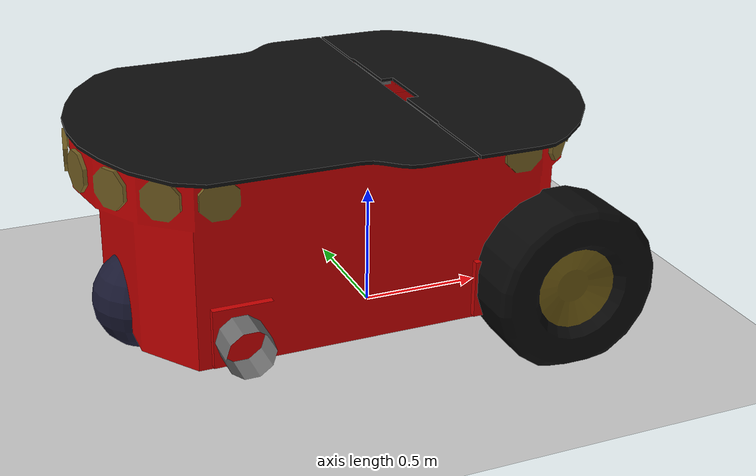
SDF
<?xml version="1.0"?>
<sdf version="1.6">
    <world name="default">

        <include>
            <uri>model://ground_plane</uri>
        </include>

        <include>
            <uri>model://sun</uri>
        </include>

        <model name='vehicle'>
            <pose>0 0 0.325 0 -0 0</pose>

            <link name='chassis'>
                <pose>-0.2 -0 0.2 0 -0 0</pose>
                <inertial>
                    <mass>1.14395</mass>
                    <inertia>
                        <ixx>0.126164</ixx>
                        <ixy>0</ixy>
                        <ixz>0</ixz>
                        <iyy>0.416519</iyy>
                        <iyz>0</iyz>
                        <izz>0.481014</izz>
                    </inertia>
                </inertial>
                <visual name='visual'>
                    <geometry>
                        <mesh>
                            <uri>model://pioneer3at/meshes/chassis.dae</uri>
                            <scale>4 4 4</scale>
                            <pose>0 0 7</pose>
                        </mesh>
                    </geometry>
                </visual>
                <collision name='collision'>
                    <geometry>
                        <box>
                            <size>2.01142 1 0.568726</size>
                        </box>
                    </geometry>
                </collision>
            </link>

            <link name='left_wheel'>
                <pose>0.554283 0.625029 -0.025 -1.5707 0 0</pose>
                <inertial>
                    <mass>2</mass>
                    <inertia>
                        <ixx>0.145833</ixx>
                        <ixy>0</ixy>
                        <ixz>0</ixz>
                        <iyy>0.145833</iyy>
                        <iyz>0</iyz>
                        <izz>0.125</izz>
                    </inertia>
                </inertial>
                <visual name='visual'>
                    <geometry>
                        <mesh>
                            <uri>model://pioneer3at/meshes/wheel.dae</uri>
                            <scale>3 3 3</scale>
                        </mesh>
                    </geometry>
                </visual>
                <collision name='collision'>
                    <geometry>
                        <sphere>
                            <radius>0.3</radius>
                        </sphere>
                    </geometry>
                    <surface>
                        <friction>
                            <ode>
                                <mu>1</mu>
                                <mu2>1</mu2>
                                <slip1>0</slip1>
                                <slip2>0</slip2>
                            </ode>
                        </friction>
                        <contact>
                            <ode>
                                <soft_cfm>0</soft_cfm>
                                <soft_erp>0.2</soft_erp>
                                <kp>1e+13</kp>
                                <kd>1</kd>
                                <max_vel>0.01</max_vel>
                                <min_depth>0.01</min_depth>
                            </ode>
                        </contact>
                    </surface>
                </collision>
            </link>

            <link name='right_wheel'>
                <pose>0.554282 -0.625029 -0.025 -1.5707 0 0</pose>
                <inertial>
                    <mass>2</mass>
                    <inertia>
                        <ixx>0.145833</ixx>
                        <ixy>0</ixy>
                        <ixz>0</ixz>
                        <iyy>0.145833</iyy>
                        <iyz>0</iyz>
                        <izz>0.125</izz>
                    </inertia>
                </inertial>
                <visual name='visual'>
                    <geometry>
                        <mesh>
                            <uri>model://pioneer3at/meshes/wheel.dae</uri>
                            <scale>3 3 3</scale>
                        </mesh>
                    </geometry>
                </visual>
                <collision name='collision'>
                    <geometry>
                        <sphere>
                            <radius>0.3</radius>
                        </sphere>
                    </geometry>
                    <surface>
                        <friction>
                            <ode>
                                <mu>1</mu>
                                <mu2>1</mu2>
                                <slip1>0</slip1>
                                <slip2>0</slip2>
                            </ode>
                        </friction>
                        <contact>
                            <ode>
                                <soft_cfm>0</soft_cfm>
                                <soft_erp>0.2</soft_erp>
                                <kp>1e+13</kp>
                                <kd>1</kd>
                                <max_vel>0.01</max_vel>
                                <min_depth>0.01</min_depth>
                            </ode>
                        </contact>
                    </surface>
                </collision>
            </link>

            <link name='caster'>
                <pose>-0.957138 -0 -0.125 0 -0 0</pose>
                <inertial>
                    <mass>1</mass>
                    <inertia>
                        <ixx>0.1</ixx>
                        <ixy>0</ixy>
                        <ixz>0</ixz>
                        <iyy>0.1</iyy>
                        <iyz>0</iyz>
                        <izz>0.1</izz>
                    </inertia>
                </inertial>
                <visual name='visual'>
                    <material>
                        <!-- Wheel material -->
                        <ambient>0.1 0.1 0.1 1</ambient>
                        <diffuse>0.1 0.1 0.2 1</diffuse>
                        <specular>0 0 0 0</specular>
                        <emissive>0 0 0 1</emissive>
                    </material> <!-- End wheel material -->
                    <geometry>
                        <sphere>
                            <radius>0.2</radius>
                        </sphere>
                    </geometry>
                </visual>
                <collision name='collision'>
                    <geometry>
                        <sphere>
                            <radius>0.2</radius>
                        </sphere>
                    </geometry>
                </collision>
            </link>

            <joint name='left_wheel_joint' type='revolute'>
                <parent>chassis</parent>
                <child>left_wheel</child>
                <axis>
                    <xyz>0 0 1</xyz>
                    <limit>
                        <lower>-1.79769e+308</lower>
                        <upper>1.79769e+308</upper>
                    </limit>
                </axis>
            </joint>

            <joint name='right_wheel_joint' type='revolute'>
                <parent>chassis</parent>
                <child>right_wheel</child>
                <axis>
                    <xyz>0 0 1</xyz>
                    <limit>
                        <lower>-1.79769e+308</lower>
                        <upper>1.79769e+308</upper>
                    </limit>
                </axis>
            </joint>

            <joint name='caster_wheel' type='ball'>
                <parent>chassis</parent>
                <child>caster</child>
            </joint>

            <plugin name='diff_drive' filename='libgazebo_ros_diff_drive.so'>

                <ros>
                    <namespace>/demo</namespace>
                    <remapping>cmd_vel:=cmd_demo</remapping>
                    <remapping>odom:=odom_demo</remapping>
                </ros>

                <!-- wheels -->
                <left_joint>left_wheel_joint</left_joint>
                <right_joint>right_wheel_joint</right_joint>

                <!-- limits -->
                <max_wheel_torque>20</max_wheel_torque>
                <max_wheel_acceleration>1.0</max_wheel_acceleration>

                <!-- output -->
                <publish_odom>true</publish_odom>
                <publish_odom_tf>true</publish_odom_tf>
                <publish_wheel_tf>true</publish_wheel_tf>

                <odometry_frame>odom_demo</odometry_frame>
                <robot_base_frame>chassis</robot_base_frame>

            </plugin>

        </model>

    </world>
</sdf>
